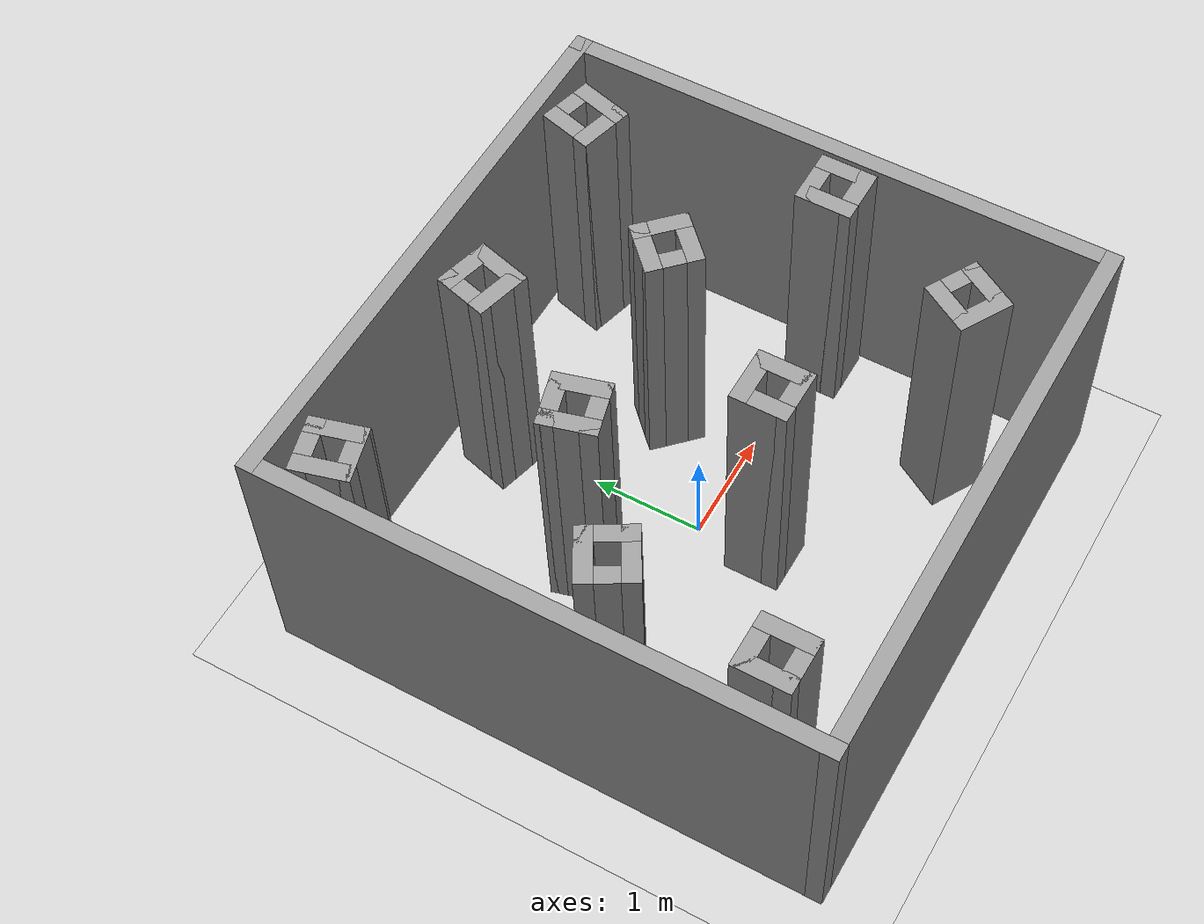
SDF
<sdf version="1.7">
 <world name="default">
  <light name="sun" type="directional">
   <pose>0 0 10 0 -0 0</pose>
   <diffuse>0.8 0.8 0.8 1</diffuse>
   <specular>0.2 0.2 0.2 1</specular>
   <attenuation>
    <range>1000</range>
    <constant>0.9</constant>
    <linear>0.01</linear>
    <quadratic>0.001</quadratic>
   </attenuation>
   <direction>-0.5 0.1 -0.9</direction>
   <spot><inner_angle>0</inner_angle><outer_angle>0</outer_angle><falloff>0</falloff></spot>
  </light>
  <model name="ground_plane">
   <static>1</static>
   <link name="link">
    <collision name="collision">
     <geometry><plane><normal>0 0 1</normal><size>100 100</size></plane></geometry>
     <surface><friction><ode><mu>100</mu><mu2>50</mu2></ode></friction></surface>
    </collision>
    <visual name="visual">
     <cast_shadows>0</cast_shadows>
     <geometry><plane><normal>0 0 1</normal><size>100 100</size></plane></geometry>
     <material>
      <script><uri>file://media/materials/scripts/gazebo.material</uri><name>Gazebo/Grey</name></script>
     </material>
    </visual>
   </link>
  </model>
  <gravity>0 0 -9.8</gravity>
  <magnetic_field>6e-06 2.3e-05 -4.2e-05</magnetic_field>
  <atmosphere type="adiabatic"/>
  <physics type="ode">
   <max_step_size>0.001</max_step_size>
   <real_time_factor>1</real_time_factor>
   <real_time_update_rate>1000</real_time_update_rate>
  </physics>
  <scene><ambient>0.4 0.4 0.4 1</ambient><background>0.7 0.7 0.7 1</background><shadows>1</shadows></scene>
  <spherical_coordinates>
   <surface_model>EARTH_WGS84</surface_model>
   <latitude_deg>0</latitude_deg>
   <longitude_deg>0</longitude_deg>
   <elevation>0</elevation>
   <heading_deg>0</heading_deg>
  </spherical_coordinates>
  <model name="tokuron">
   <pose>-0.025953 0.03217 0 0 -0 0</pose>
   <link name="Wall_0">
    <collision name="Wall_0_Collision">
     <geometry><box><size>5 0.15 2.5</size></box></geometry>
     <pose>0 0 1.25 0 -0 0</pose>
    </collision>
    <visual name="Wall_0_Visual">
     <pose>0 0 1.25 0 -0 0</pose>
     <geometry><box><size>5 0.15 2.5</size></box></geometry>
     <material>
      <script><uri>file://media/materials/scripts/gazebo.material</uri><name>Gazebo/Grey</name></script>
      <ambient>1 1 1 1</ambient>
     </material>
     <meta><layer>0</layer></meta>
    </visual>
    <pose>-0 2.425 0 0 -0 0</pose>
   </link>
   <link name="Wall_1">
    <collision name="Wall_1_Collision">
     <geometry><box><size>5 0.15 2.5</size></box></geometry>
     <pose>0 0 1.25 0 -0 0</pose>
    </collision>
    <visual name="Wall_1_Visual">
     <pose>0 0 1.25 0 -0 0</pose>
     <geometry><box><size>5 0.15 2.5</size></box></geometry>
     <material>
      <script><uri>file://media/materials/scripts/gazebo.material</uri><name>Gazebo/Grey</name></script>
      <ambient>1 1 1 1</ambient>
     </material>
     <meta><layer>0</layer></meta>
    </visual>
    <pose>2.425 -0 0 0 -0 -1.5708</pose>
   </link>
   <link name="Wall_10">
    <collision name="Wall_10_Collision">
     <geometry><box><size>0.5 0.15 2.5</size></box></geometry>
     <pose>0 0 1.25 0 -0 0</pose>
    </collision>
    <visual name="Wall_10_Visual">
     <pose>0 0 1.25 0 -0 0</pose>
     <geometry><box><size>0.5 0.15 2.5</size></box></geometry>
     <material>
      <script><uri>file://media/materials/scripts/gazebo.material</uri><name>Gazebo/Grey</name></script>
      <ambient>1 1 1 1</ambient>
     </material>
     <meta><layer>0</layer></meta>
    </visual>
    <pose>-0.078269 1.99407 0 0 -0 -0.261799</pose>
   </link>
   <link name="Wall_11">
    <collision name="Wall_11_Collision">
     <geometry><box><size>0.5 0.15 2.5</size></box></geometry>
     <pose>0 0 1.25 0 -0 0</pose>
    </collision>
    <visual name="Wall_11_Visual">
     <pose>0 0 1.25 0 -0 0</pose>
     <geometry><box><size>0.5 0.15 2.5</size></box></geometry>
     <material>
      <script><uri>file://media/materials/scripts/gazebo.material</uri><name>Gazebo/Grey</name></script>
      <ambient>1 1 1 1</ambient>
     </material>
     <meta><layer>0</layer></meta>
    </visual>
    <pose>0.045474 1.77974 0 0 -0 -1.8326</pose>
   </link>
   <link name="Wall_12">
    <collision name="Wall_12_Collision">
     <geometry><box><size>0.5 0.15 2.5</size></box></geometry>
     <pose>0 0 1.25 0 -0 0</pose>
    </collision>
    <visual name="Wall_12_Visual">
     <pose>0 0 1.25 0 -0 0</pose>
     <geometry><box><size>0.5 0.15 2.5</size></box></geometry>
     <material>
      <script><uri>file://media/materials/scripts/gazebo.material</uri><name>Gazebo/Grey</name></script>
      <ambient>1 1 1 1</ambient>
     </material>
     <meta><layer>0</layer></meta>
    </visual>
    <pose>-0.168856 1.656 0 0 -0 2.87979</pose>
   </link>
   <link name="Wall_13">
    <collision name="Wall_13_Collision">
     <geometry><box><size>0.5 0.15 2.5</size></box></geometry>
     <pose>0 0 1.25 0 -0 0</pose>
    </collision>
    <visual name="Wall_13_Visual">
     <pose>0 0 1.25 0 -0 0</pose>
     <geometry><box><size>0.5 0.15 2.5</size></box></geometry>
     <material>
      <script><uri>file://media/materials/scripts/gazebo.material</uri><name>Gazebo/Grey</name></script>
      <ambient>1 1 1 1</ambient>
     </material>
     <meta><layer>0</layer></meta>
    </visual>
    <pose>-0.2926 1.87033 0 0 -0 1.309</pose>
   </link>
   <link name="Wall_15">
    <collision name="Wall_15_Collision">
     <geometry><box><size>0.5 0.15 2.5</size></box></geometry>
     <pose>0 0 1.25 0 -0 0</pose>
    </collision>
    <visual name="Wall_15_Visual">
     <pose>0 0 1.25 0 -0 0</pose>
     <geometry><box><size>0.5 0.15 2.5</size></box></geometry>
     <material>
      <script><uri>file://media/materials/scripts/gazebo.material</uri><name>Gazebo/Grey</name></script>
      <ambient>1 1 1 1</ambient>
     </material>
     <meta><layer>0</layer></meta>
    </visual>
    <pose>1.79697 2.15286 0 0 -0 -0.261799</pose>
   </link>
   <link name="Wall_16">
    <collision name="Wall_16_Collision">
     <geometry><box><size>0.5 0.15 2.5</size></box></geometry>
     <pose>0 0 1.25 0 -0 0</pose>
    </collision>
    <visual name="Wall_16_Visual">
     <pose>0 0 1.25 0 -0 0</pose>
     <geometry><box><size>0.5 0.15 2.5</size></box></geometry>
     <material>
      <script><uri>file://media/materials/scripts/gazebo.material</uri><name>Gazebo/Grey</name></script>
      <ambient>1 1 1 1</ambient>
     </material>
     <meta><layer>0</layer></meta>
    </visual>
    <pose>1.92071 1.93853 0 0 -0 -1.8326</pose>
   </link>
   <link name="Wall_17">
    <collision name="Wall_17_Collision">
     <geometry><box><size>0.5 0.15 2.5</size></box></geometry>
     <pose>0 0 1.25 0 -0 0</pose>
    </collision>
    <visual name="Wall_17_Visual">
     <pose>0 0 1.25 0 -0 0</pose>
     <geometry><box><size>0.5 0.15 2.5</size></box></geometry>
     <material>
      <script><uri>file://media/materials/scripts/gazebo.material</uri><name>Gazebo/Grey</name></script>
      <ambient>1 1 1 1</ambient>
     </material>
     <meta><layer>0</layer></meta>
    </visual>
    <pose>1.70638 1.81479 0 0 -0 2.87979</pose>
   </link>
   <link name="Wall_18">
    <collision name="Wall_18_Collision">
     <geometry><box><size>0.5 0.15 2.5</size></box></geometry>
     <pose>0 0 1.25 0 -0 0</pose>
    </collision>
    <visual name="Wall_18_Visual">
     <pose>0 0 1.25 0 -0 0</pose>
     <geometry><box><size>0.5 0.15 2.5</size></box></geometry>
     <material>
      <script><uri>file://media/materials/scripts/gazebo.material</uri><name>Gazebo/Grey</name></script>
      <ambient>1 1 1 1</ambient>
     </material>
     <meta><layer>0</layer></meta>
    </visual>
    <pose>1.58264 2.02912 0 0 -0 1.309</pose>
   </link>
   <link name="Wall_2">
    <collision name="Wall_2_Collision">
     <geometry><box><size>5 0.15 2.5</size></box></geometry>
     <pose>0 0 1.25 0 -0 0</pose>
    </collision>
    <visual name="Wall_2_Visual">
     <pose>0 0 1.25 0 -0 0</pose>
     <geometry><box><size>5 0.15 2.5</size></box></geometry>
     <material>
      <script><uri>file://media/materials/scripts/gazebo.material</uri><name>Gazebo/Grey</name></script>
      <ambient>1 1 1 1</ambient>
     </material>
     <meta><layer>0</layer></meta>
    </visual>
    <pose>-0 -2.425 0 0 -0 3.14159</pose>
   </link>
   <link name="Wall_20">
    <collision name="Wall_20_Collision">
     <geometry><box><size>0.5 0.15 2.5</size></box></geometry>
     <pose>0 0 1.25 0 -0 0</pose>
    </collision>
    <visual name="Wall_20_Visual">
     <pose>0 0 1.25 0 -0 0</pose>
     <geometry><box><size>0.5 0.15 2.5</size></box></geometry>
     <material>
      <script><uri>file://media/materials/scripts/gazebo.material</uri><name>Gazebo/Grey</name></script>
      <ambient>1 1 1 1</ambient>
     </material>
     <meta><layer>0</layer></meta>
    </visual>
    <pose>-0.849536 0.753847 0 0 -0 0.261799</pose>
   </link>
   <link name="Wall_21">
    <collision name="Wall_21_Collision">
     <geometry><box><size>0.5 0.15 2.5</size></box></geometry>
     <pose>0 0 1.25 0 -0 0</pose>
    </collision>
    <visual name="Wall_21_Visual">
     <pose>0 0 1.25 0 -0 0</pose>
     <geometry><box><size>0.5 0.15 2.5</size></box></geometry>
     <material>
      <script><uri>file://media/materials/scripts/gazebo.material</uri><name>Gazebo/Grey</name></script>
      <ambient>1 1 1 1</ambient>
     </material>
     <meta><layer>0</layer></meta>
    </visual>
    <pose>-0.635205 0.630103 0 0 -0 -1.309</pose>
   </link>
   <link name="Wall_22">
    <collision name="Wall_22_Collision">
     <geometry><box><size>0.5 0.15 2.5</size></box></geometry>
     <pose>0 0 1.25 0 -0 0</pose>
    </collision>
    <visual name="Wall_22_Visual">
     <pose>0 0 1.25 0 -0 0</pose>
     <geometry><box><size>0.5 0.15 2.5</size></box></geometry>
     <material>
      <script><uri>file://media/materials/scripts/gazebo.material</uri><name>Gazebo/Grey</name></script>
      <ambient>1 1 1 1</ambient>
     </material>
     <meta><layer>0</layer></meta>
    </visual>
    <pose>-0.758949 0.415773 0 0 -0 -2.87979</pose>
   </link>
   <link name="Wall_23">
    <collision name="Wall_23_Collision">
     <geometry><box><size>0.5 0.15 2.5</size></box></geometry>
     <pose>0 0 1.25 0 -0 0</pose>
    </collision>
    <visual name="Wall_23_Visual">
     <pose>0 0 1.25 0 -0 0</pose>
     <geometry><box><size>0.5 0.15 2.5</size></box></geometry>
     <material>
      <script><uri>file://media/materials/scripts/gazebo.material</uri><name>Gazebo/Grey</name></script>
      <ambient>1 1 1 1</ambient>
     </material>
     <meta><layer>0</layer></meta>
    </visual>
    <pose>-0.973279 0.539517 0 0 -0 1.8326</pose>
   </link>
   <link name="Wall_25">
    <collision name="Wall_25_Collision">
     <geometry><box><size>0.5 0.15 2.5</size></box></geometry>
     <pose>0 0 1.25 0 -0 0</pose>
    </collision>
    <visual name="Wall_25_Visual">
     <pose>0 0 1.25 0 -0 0</pose>
     <geometry><box><size>0.5 0.15 2.5</size></box></geometry>
     <material>
      <script><uri>file://media/materials/scripts/gazebo.material</uri><name>Gazebo/Grey</name></script>
      <ambient>1 1 1 1</ambient>
     </material>
     <meta><layer>0</layer></meta>
    </visual>
    <pose>0.768687 0.862543 0 0 -0 0.785398</pose>
   </link>
   <link name="Wall_26">
    <collision name="Wall_26_Collision">
     <geometry><box><size>0.5 0.15 2.5</size></box></geometry>
     <pose>0 0 1.25 0 -0 0</pose>
    </collision>
    <visual name="Wall_26_Visual">
     <pose>0 0 1.25 0 -0 0</pose>
     <geometry><box><size>0.5 0.15 2.5</size></box></geometry>
     <material>
      <script><uri>file://media/materials/scripts/gazebo.material</uri><name>Gazebo/Grey</name></script>
      <ambient>1 1 1 1</ambient>
     </material>
     <meta><layer>0</layer></meta>
    </visual>
    <pose>1.01617 0.862543 0 0 -0 -0.785398</pose>
   </link>
   <link name="Wall_27">
    <collision name="Wall_27_Collision">
     <geometry><box><size>0.5 0.15 2.5</size></box></geometry>
     <pose>0 0 1.25 0 -0 0</pose>
    </collision>
    <visual name="Wall_27_Visual">
     <pose>0 0 1.25 0 -0 0</pose>
     <geometry><box><size>0.5 0.15 2.5</size></box></geometry>
     <material>
      <script><uri>file://media/materials/scripts/gazebo.material</uri><name>Gazebo/Grey</name></script>
      <ambient>1 1 1 1</ambient>
     </material>
     <meta><layer>0</layer></meta>
    </visual>
    <pose>1.01617 0.615056 0 0 -0 -2.35619</pose>
   </link>
   <link name="Wall_28">
    <collision name="Wall_28_Collision">
     <geometry><box><size>0.5 0.15 2.5</size></box></geometry>
     <pose>0 0 1.25 0 -0 0</pose>
    </collision>
    <visual name="Wall_28_Visual">
     <pose>0 0 1.25 0 -0 0</pose>
     <geometry><box><size>0.5 0.15 2.5</size></box></geometry>
     <material>
      <script><uri>file://media/materials/scripts/gazebo.material</uri><name>Gazebo/Grey</name></script>
      <ambient>1 1 1 1</ambient>
     </material>
     <meta><layer>0</layer></meta>
    </visual>
    <pose>0.768687 0.615056 0 0 -0 2.35619</pose>
   </link>
   <link name="Wall_3">
    <collision name="Wall_3_Collision">
     <geometry><box><size>5 0.15 2.5</size></box></geometry>
     <pose>0 0 1.25 0 -0 0</pose>
    </collision>
    <visual name="Wall_3_Visual">
     <pose>0 0 1.25 0 -0 0</pose>
     <geometry><box><size>5 0.15 2.5</size></box></geometry>
     <material>
      <script><uri>file://media/materials/scripts/gazebo.material</uri><name>Gazebo/Grey</name></script>
      <ambient>1 1 1 1</ambient>
     </material>
     <meta><layer>0</layer></meta>
    </visual>
    <pose>-2.425 -0 0 0 -0 1.5708</pose>
   </link>
   <link name="Wall_30">
    <collision name="Wall_30_Collision">
     <geometry><box><size>0.5 0.15 2.5</size></box></geometry>
     <pose>0 0 1.25 0 -0 0</pose>
    </collision>
    <visual name="Wall_30_Visual">
     <pose>0 0 1.25 0 -0 0</pose>
     <geometry><box><size>0.5 0.15 2.5</size></box></geometry>
     <material>
      <script><uri>file://media/materials/scripts/gazebo.material</uri><name>Gazebo/Grey</name></script>
      <ambient>1 1 1 1</ambient>
     </material>
     <meta><layer>0</layer></meta>
    </visual>
    <pose>-1.91806 -0.141564 0 0 -0 0.523599</pose>
   </link>
   <link name="Wall_31">
    <collision name="Wall_31_Collision">
     <geometry><box><size>0.5 0.15 2.5</size></box></geometry>
     <pose>0 0 1.25 0 -0 0</pose>
    </collision>
    <visual name="Wall_31_Visual">
     <pose>0 0 1.25 0 -0 0</pose>
     <geometry><box><size>0.5 0.15 2.5</size></box></geometry>
     <material>
      <script><uri>file://media/materials/scripts/gazebo.material</uri><name>Gazebo/Grey</name></script>
      <ambient>1 1 1 1</ambient>
     </material>
     <meta><layer>0</layer></meta>
    </visual>
    <pose>-1.679 -0.205619 0 0 -0 -1.0472</pose>
   </link>
   <link name="Wall_32">
    <collision name="Wall_32_Collision">
     <geometry><box><size>0.5 0.15 2.5</size></box></geometry>
     <pose>0 0 1.25 0 -0 0</pose>
    </collision>
    <visual name="Wall_32_Visual">
     <pose>0 0 1.25 0 -0 0</pose>
     <geometry><box><size>0.5 0.15 2.5</size></box></geometry>
     <material>
      <script><uri>file://media/materials/scripts/gazebo.material</uri><name>Gazebo/Grey</name></script>
      <ambient>1 1 1 1</ambient>
     </material>
     <meta><layer>0</layer></meta>
    </visual>
    <pose>-1.74306 -0.444673 0 0 -0 -2.61799</pose>
   </link>
   <link name="Wall_33">
    <collision name="Wall_33_Collision">
     <geometry><box><size>0.5 0.15 2.5</size></box></geometry>
     <pose>0 0 1.25 0 -0 0</pose>
    </collision>
    <visual name="Wall_33_Visual">
     <pose>0 0 1.25 0 -0 0</pose>
     <geometry><box><size>0.5 0.15 2.5</size></box></geometry>
     <material>
      <script><uri>file://media/materials/scripts/gazebo.material</uri><name>Gazebo/Grey</name></script>
      <ambient>1 1 1 1</ambient>
     </material>
     <meta><layer>0</layer></meta>
    </visual>
    <pose>-1.98211 -0.380619 0 0 -0 2.0944</pose>
   </link>
   <link name="Wall_35">
    <collision name="Wall_35_Collision">
     <geometry><box><size>0.5 0.15 2.5</size></box></geometry>
     <pose>0 0 1.25 0 -0 0</pose>
    </collision>
    <visual name="Wall_35_Visual">
     <pose>0 0 1.25 0 -0 0</pose>
     <geometry><box><size>0.5 0.15 2.5</size></box></geometry>
     <material>
      <script><uri>file://media/materials/scripts/gazebo.material</uri><name>Gazebo/Grey</name></script>
      <ambient>1 1 1 1</ambient>
     </material>
     <meta><layer>0</layer></meta>
    </visual>
    <pose>0.0638 -0.47103 0 0 -0 0</pose>
   </link>
   <link name="Wall_36">
    <collision name="Wall_36_Collision">
     <geometry><box><size>0.5 0.15 2.5</size></box></geometry>
     <pose>0 0 1.25 0 -0 0</pose>
    </collision>
    <visual name="Wall_36_Visual">
     <pose>0 0 1.25 0 -0 0</pose>
     <geometry><box><size>0.5 0.15 2.5</size></box></geometry>
     <material>
      <script><uri>file://media/materials/scripts/gazebo.material</uri><name>Gazebo/Grey</name></script>
      <ambient>1 1 1 1</ambient>
     </material>
     <meta><layer>0</layer></meta>
    </visual>
    <pose>0.2388 -0.64603 0 0 -0 -1.5708</pose>
   </link>
   <link name="Wall_37">
    <collision name="Wall_37_Collision">
     <geometry><box><size>0.5 0.15 2.5</size></box></geometry>
     <pose>0 0 1.25 0 -0 0</pose>
    </collision>
    <visual name="Wall_37_Visual">
     <pose>0 0 1.25 0 -0 0</pose>
     <geometry><box><size>0.5 0.15 2.5</size></box></geometry>
     <material>
      <script><uri>file://media/materials/scripts/gazebo.material</uri><name>Gazebo/Grey</name></script>
      <ambient>1 1 1 1</ambient>
     </material>
     <meta><layer>0</layer></meta>
    </visual>
    <pose>0.0638 -0.82103 0 0 -0 3.14159</pose>
   </link>
   <link name="Wall_38">
    <collision name="Wall_38_Collision">
     <geometry><box><size>0.5 0.15 2.5</size></box></geometry>
     <pose>0 0 1.25 0 -0 0</pose>
    </collision>
    <visual name="Wall_38_Visual">
     <pose>0 0 1.25 0 -0 0</pose>
     <geometry><box><size>0.5 0.15 2.5</size></box></geometry>
     <material>
      <script><uri>file://media/materials/scripts/gazebo.material</uri><name>Gazebo/Grey</name></script>
      <ambient>1 1 1 1</ambient>
     </material>
     <meta><layer>0</layer></meta>
    </visual>
    <pose>-0.1112 -0.64603 0 0 -0 1.5708</pose>
   </link>
   <link name="Wall_40">
    <collision name="Wall_40_Collision">
     <geometry><box><size>0.5 0.15 2.5</size></box></geometry>
     <pose>0 0 1.25 0 -0 0</pose>
    </collision>
    <visual name="Wall_40_Visual">
     <pose>0 0 1.25 0 -0 0</pose>
     <geometry><box><size>0.5 0.15 2.5</size></box></geometry>
     <material>
      <script><uri>file://media/materials/scripts/gazebo.material</uri><name>Gazebo/Grey</name></script>
      <ambient>1 1 1 1</ambient>
     </material>
     <meta><layer>0</layer></meta>
    </visual>
    <pose>2.06002 -0.002221 0 0 -0 0</pose>
   </link>
   <link name="Wall_41">
    <collision name="Wall_41_Collision">
     <geometry><box><size>0.5 0.15 2.5</size></box></geometry>
     <pose>0 0 1.25 0 -0 0</pose>
    </collision>
    <visual name="Wall_41_Visual">
     <pose>0 0 1.25 0 -0 0</pose>
     <geometry><box><size>0.5 0.15 2.5</size></box></geometry>
     <material>
      <script><uri>file://media/materials/scripts/gazebo.material</uri><name>Gazebo/Grey</name></script>
      <ambient>1 1 1 1</ambient>
     </material>
     <meta><layer>0</layer></meta>
    </visual>
    <pose>2.23502 -0.177221 0 0 -0 -1.5708</pose>
   </link>
   <link name="Wall_42">
    <collision name="Wall_42_Collision">
     <geometry><box><size>0.5 0.15 2.5</size></box></geometry>
     <pose>0 0 1.25 0 -0 0</pose>
    </collision>
    <visual name="Wall_42_Visual">
     <pose>0 0 1.25 0 -0 0</pose>
     <geometry><box><size>0.5 0.15 2.5</size></box></geometry>
     <material>
      <script><uri>file://media/materials/scripts/gazebo.material</uri><name>Gazebo/Grey</name></script>
      <ambient>1 1 1 1</ambient>
     </material>
     <meta><layer>0</layer></meta>
    </visual>
    <pose>2.06002 -0.352221 0 0 -0 3.14159</pose>
   </link>
   <link name="Wall_43">
    <collision name="Wall_43_Collision">
     <geometry><box><size>0.5 0.15 2.5</size></box></geometry>
     <pose>0 0 1.25 0 -0 0</pose>
    </collision>
    <visual name="Wall_43_Visual">
     <pose>0 0 1.25 0 -0 0</pose>
     <geometry><box><size>0.5 0.15 2.5</size></box></geometry>
     <material>
      <script><uri>file://media/materials/scripts/gazebo.material</uri><name>Gazebo/Grey</name></script>
      <ambient>1 1 1 1</ambient>
     </material>
     <meta><layer>0</layer></meta>
    </visual>
    <pose>1.88502 -0.177221 0 0 -0 1.5708</pose>
   </link>
   <link name="Wall_45">
    <collision name="Wall_45_Collision">
     <geometry><box><size>0.5 0.15 2.5</size></box></geometry>
     <pose>0 0 1.25 0 -0 0</pose>
    </collision>
    <visual name="Wall_45_Visual">
     <pose>0 0 1.25 0 -0 0</pose>
     <geometry><box><size>0.5 0.15 2.5</size></box></geometry>
     <material>
      <script><uri>file://media/materials/scripts/gazebo.material</uri><name>Gazebo/Grey</name></script>
      <ambient>1 1 1 1</ambient>
     </material>
     <meta><layer>0</layer></meta>
    </visual>
    <pose>-1.9551 -1.55988 0 0 -0 0</pose>
   </link>
   <link name="Wall_46">
    <collision name="Wall_46_Collision">
     <geometry><box><size>0.5 0.15 2.5</size></box></geometry>
     <pose>0 0 1.25 0 -0 0</pose>
    </collision>
    <visual name="Wall_46_Visual">
     <pose>0 0 1.25 0 -0 0</pose>
     <geometry><box><size>0.5 0.15 2.5</size></box></geometry>
     <material>
      <script><uri>file://media/materials/scripts/gazebo.material</uri><name>Gazebo/Grey</name></script>
      <ambient>1 1 1 1</ambient>
     </material>
     <meta><layer>0</layer></meta>
    </visual>
    <pose>-1.7801 -1.73488 0 0 -0 -1.5708</pose>
   </link>
   <link name="Wall_47">
    <collision name="Wall_47_Collision">
     <geometry><box><size>0.5 0.15 2.5</size></box></geometry>
     <pose>0 0 1.25 0 -0 0</pose>
    </collision>
    <visual name="Wall_47_Visual">
     <pose>0 0 1.25 0 -0 0</pose>
     <geometry><box><size>0.5 0.15 2.5</size></box></geometry>
     <material>
      <script><uri>file://media/materials/scripts/gazebo.material</uri><name>Gazebo/Grey</name></script>
      <ambient>1 1 1 1</ambient>
     </material>
     <meta><layer>0</layer></meta>
    </visual>
    <pose>-1.9551 -1.90988 0 0 -0 3.14159</pose>
   </link>
   <link name="Wall_48">
    <collision name="Wall_48_Collision">
     <geometry><box><size>0.5 0.15 2.5</size></box></geometry>
     <pose>0 0 1.25 0 -0 0</pose>
    </collision>
    <visual name="Wall_48_Visual">
     <pose>0 0 1.25 0 -0 0</pose>
     <geometry><box><size>0.5 0.15 2.5</size></box></geometry>
     <material>
      <script><uri>file://media/materials/scripts/gazebo.material</uri><name>Gazebo/Grey</name></script>
      <ambient>1 1 1 1</ambient>
     </material>
     <meta><layer>0</layer></meta>
    </visual>
    <pose>-2.1301 -1.73488 0 0 -0 1.5708</pose>
   </link>
   <link name="Wall_5">
    <collision name="Wall_5_Collision">
     <geometry><box><size>0.5 0.15 2.5</size></box></geometry>
     <pose>0 0 1.25 0 -0 0</pose>
    </collision>
    <visual name="Wall_5_Visual">
     <pose>0 0 1.25 0 -0 0</pose>
     <geometry><box><size>0.5 0.15 2.5</size></box></geometry>
     <material>
      <script><uri>file://media/materials/scripts/gazebo.material</uri><name>Gazebo/Grey</name></script>
      <ambient>1 1 1 1</ambient>
     </material>
     <meta><layer>0</layer></meta>
    </visual>
    <pose>-2.08205 2.14515 0 0 -0 0.261799</pose>
   </link>
   <link name="Wall_50">
    <collision name="Wall_50_Collision">
     <geometry><box><size>0.5 0.15 2.5</size></box></geometry>
     <pose>0 0 1.25 0 -0 0</pose>
    </collision>
    <visual name="Wall_50_Visual">
     <pose>0 0 1.25 0 -0 0</pose>
     <geometry><box><size>0.5 0.15 2.5</size></box></geometry>
     <material>
      <script><uri>file://media/materials/scripts/gazebo.material</uri><name>Gazebo/Grey</name></script>
      <ambient>1 1 1 1</ambient>
     </material>
     <meta><layer>0</layer></meta>
    </visual>
    <pose>1.64338 -1.43566 0 0 -0 -0.523599</pose>
   </link>
   <link name="Wall_51">
    <collision name="Wall_51_Collision">
     <geometry><box><size>0.5 0.15 2.5</size></box></geometry>
     <pose>0 0 1.25 0 -0 0</pose>
    </collision>
    <visual name="Wall_51_Visual">
     <pose>0 0 1.25 0 -0 0</pose>
     <geometry><box><size>0.5 0.15 2.5</size></box></geometry>
     <material>
      <script><uri>file://media/materials/scripts/gazebo.material</uri><name>Gazebo/Grey</name></script>
      <ambient>1 1 1 1</ambient>
     </material>
     <meta><layer>0</layer></meta>
    </visual>
    <pose>1.70743 -1.67471 0 0 -0 -2.0944</pose>
   </link>
   <link name="Wall_52">
    <collision name="Wall_52_Collision">
     <geometry><box><size>0.5 0.15 2.5</size></box></geometry>
     <pose>0 0 1.25 0 -0 0</pose>
    </collision>
    <visual name="Wall_52_Visual">
     <pose>0 0 1.25 0 -0 0</pose>
     <geometry><box><size>0.5 0.15 2.5</size></box></geometry>
     <material>
      <script><uri>file://media/materials/scripts/gazebo.material</uri><name>Gazebo/Grey</name></script>
      <ambient>1 1 1 1</ambient>
     </material>
     <meta><layer>0</layer></meta>
    </visual>
    <pose>1.46838 -1.73877 0 0 -0 2.61799</pose>
   </link>
   <link name="Wall_53">
    <collision name="Wall_53_Collision">
     <geometry><box><size>0.5 0.15 2.5</size></box></geometry>
     <pose>0 0 1.25 0 -0 0</pose>
    </collision>
    <visual name="Wall_53_Visual">
     <pose>0 0 1.25 0 -0 0</pose>
     <geometry><box><size>0.5 0.15 2.5</size></box></geometry>
     <material>
      <script><uri>file://media/materials/scripts/gazebo.material</uri><name>Gazebo/Grey</name></script>
      <ambient>1 1 1 1</ambient>
     </material>
     <meta><layer>0</layer></meta>
    </visual>
    <pose>1.40432 -1.49971 0 0 -0 1.0472</pose>
   </link>
   <link name="Wall_6">
    <collision name="Wall_6_Collision">
     <geometry><box><size>0.5 0.15 2.5</size></box></geometry>
     <pose>0 0 1.25 0 -0 0</pose>
    </collision>
    <visual name="Wall_6_Visual">
     <pose>0 0 1.25 0 -0 0</pose>
     <geometry><box><size>0.5 0.15 2.5</size></box></geometry>
     <material>
      <script><uri>file://media/materials/scripts/gazebo.material</uri><name>Gazebo/Grey</name></script>
      <ambient>1 1 1 1</ambient>
     </material>
     <meta><layer>0</layer></meta>
    </visual>
    <pose>-1.86772 2.02141 0 0 -0 -1.309</pose>
   </link>
   <link name="Wall_7">
    <collision name="Wall_7_Collision">
     <geometry><box><size>0.5 0.15 2.5</size></box></geometry>
     <pose>0 0 1.25 0 -0 0</pose>
    </collision>
    <visual name="Wall_7_Visual">
     <pose>0 0 1.25 0 -0 0</pose>
     <geometry><box><size>0.5 0.15 2.5</size></box></geometry>
     <material>
      <script><uri>file://media/materials/scripts/gazebo.material</uri><name>Gazebo/Grey</name></script>
      <ambient>1 1 1 1</ambient>
     </material>
     <meta><layer>0</layer></meta>
    </visual>
    <pose>-1.99146 1.80708 0 0 -0 -2.87979</pose>
   </link>
   <link name="Wall_8">
    <collision name="Wall_8_Collision">
     <geometry><box><size>0.5 0.15 2.5</size></box></geometry>
     <pose>0 0 1.25 0 -0 0</pose>
    </collision>
    <visual name="Wall_8_Visual">
     <pose>0 0 1.25 0 -0 0</pose>
     <geometry><box><size>0.5 0.15 2.5</size></box></geometry>
     <material>
      <script><uri>file://media/materials/scripts/gazebo.material</uri><name>Gazebo/Grey</name></script>
      <ambient>1 1 1 1</ambient>
     </material>
     <meta><layer>0</layer></meta>
    </visual>
    <pose>-2.20579 1.93082 0 0 -0 1.8326</pose>
   </link>
   <static>1</static>
  </model>
 </world>
</sdf>
